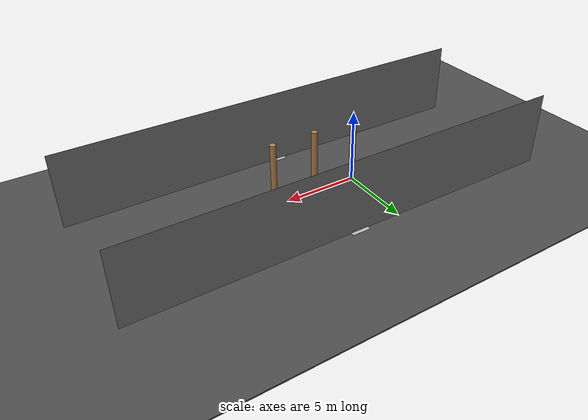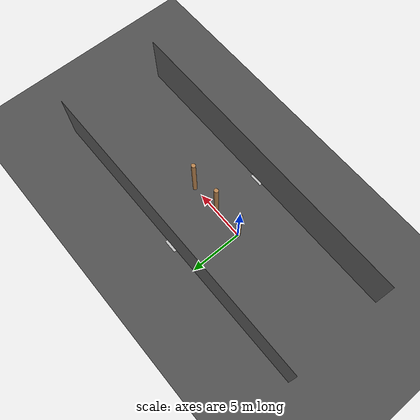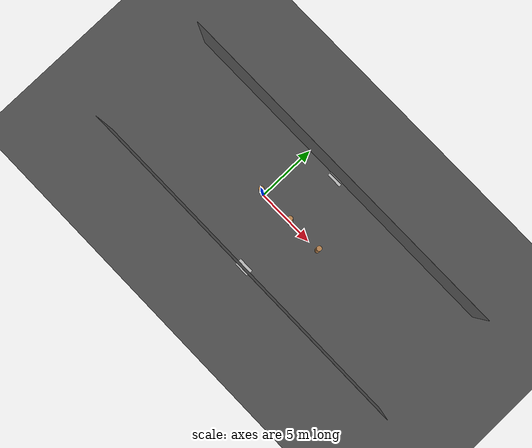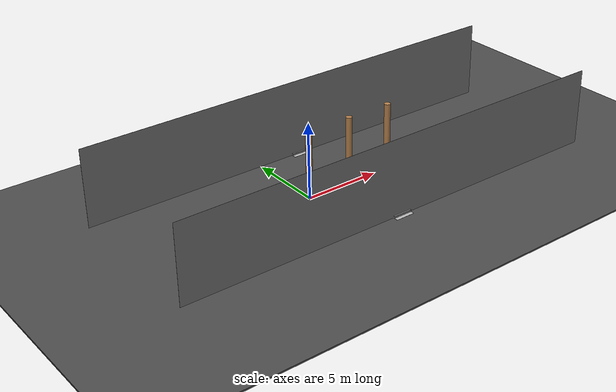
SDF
<?xml version="1.0" ?>
<sdf version='1.4'>
  <world name='default'>

    <physics type='ode'>
      <max_step_size>0.001</max_step_size>
      <real_time_factor>1</real_time_factor>
      <real_time_update_rate>1000</real_time_update_rate>
      <gravity>0 0 -9.8</gravity>
    </physics>

    <spherical_coordinates>
      <surface_model>EARTH_WGS84</surface_model>
      <latitude_deg>0</latitude_deg>
      <longitude_deg>0</longitude_deg>
      <elevation>0</elevation>
      <heading_deg>0</heading_deg>
    </spherical_coordinates>

    <!-- A global light source -->
   <scene>
      <sky>
        <clouds>
          <speed>12</speed>
        </clouds>
      </sky>
   </scene>

   <include>
     <uri>model://sun</uri>
   </include>

   <model name='asphalt_plane'>
     <static>1</static>
     <link name='link'>
       <collision name='collision'>
         <geometry>
           <box>
             <size>100 100 0.1</size>
           </box>
         </geometry>
         <max_contacts>10</max_contacts>
         <surface>
           <contact>
             <ode/>
           </contact>
           <bounce/>
         </surface>
       </collision>
       <visual name='visual'>
         <cast_shadows>0</cast_shadows>
         <geometry>
           <box>
             <size>100 100 0.1</size>
           </box>
         </geometry>
         <material>
           <script>
             <uri>model://asphalt_plane/materials/scripts</uri>
             <uri>model://asphalt_plane/materials/textures</uri>
             <name>vrc/asphalt</name>
           </script>
         </material>
       </visual>
       <self_collide>0</self_collide>
       <kinematic>0</kinematic>
       <gravity>1</gravity>
     </link>
   </model>

    <model name="target_tree1" >
      <pose>0 0 0 0 0 0 </pose>
      <include>
        <uri>model://tree</uri>
      </include>
     <plugin name="gazebo_moving_object_1" filename="libgazebo_moving_object_plugin.so">
       <staticObject>true</staticObject>
       <initDirection>up</initDirection>
       <topicName>target_tree_pose_1</topicName>
     </plugin>
    </model>

    <model name="target_tree2" >
      <pose>3 0 0 0 0 0 </pose>
      <include>
        <uri>model://tree</uri>
      </include>
     <plugin name="gazebo_moving_object_1" filename="libgazebo_moving_object_plugin.so">
       <staticObject>true</staticObject>
       <initDirection>down</initDirection>
       <topicName>target_tree_pose_2</topicName>
     </plugin>
    </model>

    <model name="target_tree3" >
      <pose>6 0 0 0 0 0 </pose>
      <include>
        <uri>model://tree</uri>
      </include>
     <plugin name="gazebo_moving_object_1" filename="libgazebo_moving_object_plugin.so">
       <staticObject>true</staticObject>
       <initDirection>up</initDirection>
       <topicName>target_tree_pose_3</topicName>
     </plugin>
    </model>

    <model name="rockwall_1" >
      <pose>3 5.0 0 0 0 0 </pose>
      <include>
        <uri>model://rockwall</uri>
      </include>
    </model>

    <model name="rockwall_2" >
      <pose>3 -5.0 0 0 0 0 </pose>
      <include>
        <uri>model://rockwall</uri>
      </include>
    </model>

  </world>
</sdf>

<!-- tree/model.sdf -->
<sdf version="1.4">

  <model name='tree'>
    <link name='trunk'>
      <pose>0 0 1.5 0 -0 0</pose>
      <inertial>
        <mass>1</mass>
        <inertia>
          <ixx>0.145833</ixx>
          <ixy>0</ixy>
          <ixz>0</ixz>
          <iyy>0.145833</iyy>
          <iyz>0</iyz>
          <izz>0.125</izz>
        </inertia>
        <pose>0 0 0 0 -0 0</pose>
      </inertial>
      <self_collide>0</self_collide>
      <kinematic>0</kinematic>
      <gravity>1</gravity>
      <visual name='visual'>
        <pose>0 0 0 0 -0 0</pose>
        <geometry>
          <cylinder>
            <radius>0.2</radius>
            <length>6</length>
          </cylinder>
        </geometry>
        <material>
          <script>
            <uri>file://media/materials/scripts/gazebo.material</uri>
            <name>Gazebo/Wood</name>
          </script>
          <ambient>0.3 0.3 0.3 1</ambient>
          <diffuse>0.7 0.7 0.7 1</diffuse>
          <specular>0.01 0.01 0.01 1</specular>
          <emissive>0 0 0 1</emissive>
          <shader type='vertex'>
            <normal_map>__default__</normal_map>
          </shader>
        </material>
        <cast_shadows>1</cast_shadows>
        <transparency>0</transparency>
      </visual>
      <collision name='collision'>
        <laser_retro>0</laser_retro>
        <max_contacts>10</max_contacts>
        <pose>0 0 0 0 -0 0</pose>
        <geometry>
          <cylinder>
            <radius>0.2</radius>
            <length>3</length>
          </cylinder>
        </geometry>
        <surface>
          <friction>
            <ode>
              <mu>1</mu>
              <mu2>1</mu2>
              <fdir1>0 0 0</fdir1>
              <slip1>0</slip1>
              <slip2>0</slip2>
            </ode>
          </friction>
          <bounce>
            <restitution_coefficient>0</restitution_coefficient>
            <threshold>1e+06</threshold>
          </bounce>
          <contact>
            <collide_without_contact>0</collide_without_contact>
            <collide_without_contact_bitmask>1</collide_without_contact_bitmask>
            <ode>
              <soft_cfm>0</soft_cfm>
              <soft_erp>0.2</soft_erp>
              <kp>1e+13</kp>
              <kd>1</kd>
              <max_vel>0.01</max_vel>
              <min_depth>0</min_depth>
            </ode>
            <bullet>
              <split_impulse>1</split_impulse>
              <split_impulse_penetration_threshold>-0.01</split_impulse_penetration_threshold>
              <soft_cfm>0</soft_cfm>
              <soft_erp>0.2</soft_erp>
              <kp>1e+13</kp>
              <kd>1</kd>
            </bullet>
          </contact>
        </surface>
      </collision>
    </link>
    <allow_auto_disable>1</allow_auto_disable>
  </model>
</sdf>

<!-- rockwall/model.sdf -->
<sdf version='1.6'>
  <model name='rockwall'>
    <link name='link'>
      <pose frame=''>0 0 0 0 -0 0</pose>
      <inertial>
        <mass>10</mass>
        <pose frame=''>0 0 0.08974 0 -0 0</pose>
        <inertia>
          <ixx>0.327091</ixx>
          <ixy>0</ixy>
          <ixz>0</ixz>
          <iyy>1.37417</iyy>
          <iyz>0</iyz>
          <izz>1.64109</izz>
        </inertia>
      </inertial>
      <self_collide>0</self_collide>
      <kinematic>0</kinematic>
      <gravity>1</gravity>
      <visual name='ModelPreview_1::link::visual_4'>
        <pose frame=''>0 -0.00249 0.18252 0 -0 0</pose>
        <geometry>
          <box>
            <size>1.27 0.1143 0.00462</size>
          </box>
        </geometry>
        <material>
          <ambient>0.46 0.46 0.46 1</ambient>
          <diffuse>0.46 0.46 0.46 1</diffuse>
          <specular>0 0 0 1</specular>
          <emissive>0 0 0 1</emissive>
          <script>
            <name>ModelPreview_1::link::top_MATERIAL_</name>
            <uri>__default__</uri>
          </script>
          <shader type='vertex'>
            <normal_map>__default__</normal_map>
          </shader>
        </material>
        <cast_shadows>1</cast_shadows>
        <transparency>0</transparency>
      </visual>
      <visual name='ModelPreview_1::link::visual_7'>
        <pose frame=''>0 -0.00249 0.18252 0 -0 0</pose>
        <geometry>
          <box>
            <size>1.27 0.1143 0.00462</size>
          </box>
        </geometry>
        <material>
          <ambient>0.46 0.46 0.46 1</ambient>
          <diffuse>0.46 0.46 0.46 1</diffuse>
          <specular>0 0 0 1</specular>
          <emissive>0 0 0 1</emissive>
          <script>
            <name>ModelPreview_1::link::top_MATERIAL_</name>
            <uri>__default__</uri>
          </script>
          <shader type='vertex'>
            <normal_map>__default__</normal_map>
          </shader>
        </material>
        <cast_shadows>1</cast_shadows>
        <transparency>0</transparency>
      </visual>
      <visual name='ModelPreview_1::link::visual_6'>
        <pose frame=''>0 -0.00249 0.18252 0 -0 0</pose>
        <geometry>
          <box>
            <size>1.27 0.1143 0.00462</size>
          </box>
        </geometry>
        <material>
          <ambient>0.46 0.46 0.46 1</ambient>
          <diffuse>0.46 0.46 0.46 1</diffuse>
          <specular>0 0 0 1</specular>
          <emissive>0 0 0 1</emissive>
          <script>
            <name>ModelPreview_1::link::top_MATERIAL_</name>
            <uri>__default__</uri>
          </script>
          <shader type='vertex'>
            <normal_map>__default__</normal_map>
          </shader>
        </material>
        <cast_shadows>1</cast_shadows>
        <transparency>0</transparency>
      </visual>
      <visual name='ModelPreview_1::link::visual_5'>
        <pose frame=''>0 -0.00249 0.18252 0 -0 0</pose>
        <geometry>
          <box>
            <size>1.27 0.1143 0.00462</size>
          </box>
        </geometry>
        <material>
          <ambient>0.46 0.46 0.46 1</ambient>
          <diffuse>0.46 0.46 0.46 1</diffuse>
          <specular>0 0 0 1</specular>
          <emissive>0 0 0 1</emissive>
          <script>
            <name>ModelPreview_1::link::top_MATERIAL_</name>
            <uri>__default__</uri>
          </script>
          <shader type='vertex'>
            <normal_map>__default__</normal_map>
          </shader>
        </material>
        <cast_shadows>1</cast_shadows>
        <transparency>0</transparency>
      </visual>
      <visual name='platform'>
        <pose frame=''>0 0 0.06432 0 -0 0</pose>
        <geometry>
          <box>
            <size>1.27 0.5969 0.003175</size>
          </box>
        </geometry>
        <cast_shadows>1</cast_shadows>
        <transparency>0</transparency>
        <material>
          <shader type='vertex'>
            <normal_map>__default__</normal_map>
          </shader>
        </material>
      </visual>
      <visual name='ModelPreview_1::link::visual_8'>
        <pose frame=''>0 -0.00249 0.18252 0 -0 0</pose>
        <geometry>
          <box>
            <size>1.27 0.1143 0.00462</size>
          </box>
        </geometry>
        <material>
          <ambient>0.46 0.46 0.46 1</ambient>
          <diffuse>0.46 0.46 0.46 1</diffuse>
          <specular>0 0 0 1</specular>
          <emissive>0 0 0 1</emissive>
          <script>
            <name>ModelPreview_1::link::top_MATERIAL_</name>
            <uri>__default__</uri>
          </script>
          <shader type='vertex'>
            <normal_map>__default__</normal_map>
          </shader>
        </material>
        <cast_shadows>1</cast_shadows>
        <transparency>0</transparency>
      </visual>
      <visual name='ModelPreview_1::link::visual_9'>
        <pose frame=''>0 -0.00249 0.18252 0 -0 0</pose>
        <geometry>
          <box>
            <size>1.27 0.1143 0.00462</size>
          </box>
        </geometry>
        <material>
          <ambient>0.46 0.46 0.46 1</ambient>
          <diffuse>0.46 0.46 0.46 1</diffuse>
          <specular>0 0 0 1</specular>
          <emissive>0 0 0 1</emissive>
          <script>
            <name>ModelPreview_1::link::top_MATERIAL_</name>
            <uri>__default__</uri>
          </script>
          <shader type='vertex'>
            <normal_map>__default__</normal_map>
          </shader>
        </material>
        <cast_shadows>1</cast_shadows>
        <transparency>0</transparency>
      </visual>
      <visual name='up1'>
        <pose frame=''>0 0.05166 0.12537 0 -0 0</pose>
        <geometry>
          <box>
            <size>30 0.00462 10</size>
          </box>
        </geometry>
        <material>
          <ambient>0.46 0.46 0.46 1</ambient>
          <diffuse>0.46 0.46 0.46 1</diffuse>
          <specular>0 0 0 1</specular>
          <emissive>0 0 0 1</emissive>
          <script>
            <name>ModelPreview_1::link::up1_MATERIAL_</name>
            <uri>__default__</uri>
          </script>
          <shader type='vertex'>
            <normal_map>__default__</normal_map>
          </shader>
        </material>
        <cast_shadows>1</cast_shadows>
        <transparency>0</transparency>
      </visual>
      <visual name='up2'>
        <pose frame=''>0 -0.05801 0.12537 0 -0 0</pose>
        <geometry>
          <box>
            <size>1.27 0.00462 0.11892</size>
          </box>
        </geometry>
        <material>
          <ambient>0.46 0.46 0.46 1</ambient>
          <diffuse>0.46 0.46 0.46 1</diffuse>
          <specular>0 0 0 1</specular>
          <emissive>0 0 0 1</emissive>
          <script>
            <name>ModelPreview_1::link::up2_MATERIAL_</name>
            <uri>__default__</uri>
          </script>
          <shader type='vertex'>
            <normal_map>__default__</normal_map>
          </shader>
        </material>
        <cast_shadows>1</cast_shadows>
        <transparency>0</transparency>
      </visual>
      <visual name='top'>
        <pose frame=''>0 -0.00249 0.18252 0 -0 0</pose>
        <geometry>
          <box>
            <size>1.27 0.1143 0.00462</size>
          </box>
        </geometry>
        <material>
          <ambient>0.46 0.46 0.46 1</ambient>
          <diffuse>0.46 0.46 0.46 1</diffuse>
          <specular>0 0 0 1</specular>
          <emissive>0 0 0 1</emissive>
          <script>
            <name>ModelPreview_1::link::top_MATERIAL_</name>
            <uri>__default__</uri>
          </script>
          <shader type='vertex'>
            <normal_map>__default__</normal_map>
          </shader>
        </material>
        <cast_shadows>1</cast_shadows>
        <transparency>0</transparency>
      </visual>
      <collision name='top'>
        <laser_retro>0</laser_retro>
        <max_contacts>10</max_contacts>
        <pose frame=''>0 -0.00249 0.18252 0 -0 0</pose>
        <geometry>
          <box>
            <size>1.27 0.1143 0.00462</size>
          </box>
        </geometry>
        <surface>
          <friction>
            <ode>
              <mu>1</mu>
              <mu2>1</mu2>
              <fdir1>0 0 0</fdir1>
              <slip1>0</slip1>
              <slip2>0</slip2>
            </ode>
            <torsional>
              <coefficient>1</coefficient>
              <patch_radius>0</patch_radius>
              <surface_radius>0</surface_radius>
              <use_patch_radius>1</use_patch_radius>
              <ode>
                <slip>0</slip>
              </ode>
            </torsional>
          </friction>
          <bounce>
            <restitution_coefficient>0</restitution_coefficient>
            <threshold>1e+06</threshold>
          </bounce>
          <contact>
            <collide_without_contact>0</collide_without_contact>
            <collide_without_contact_bitmask>1</collide_without_contact_bitmask>
            <collide_bitmask>1</collide_bitmask>
            <ode>
              <soft_cfm>0</soft_cfm>
              <soft_erp>0.2</soft_erp>
              <kp>1e+13</kp>
              <kd>1</kd>
              <max_vel>0.01</max_vel>
              <min_depth>0</min_depth>
            </ode>
            <bullet>
              <split_impulse>1</split_impulse>
              <split_impulse_penetration_threshold>-0.01</split_impulse_penetration_threshold>
              <soft_cfm>0</soft_cfm>
              <soft_erp>0.2</soft_erp>
              <kp>1e+13</kp>
              <kd>1</kd>
            </bullet>
          </contact>
        </surface>
      </collision>
      <collision name='platform'>
        <laser_retro>0</laser_retro>
        <max_contacts>10</max_contacts>
        <pose frame=''>0 0 0.06432 0 -0 0</pose>
        <geometry>
          <box>
            <size>1.27 0.5969 0.003175</size>
          </box>
        </geometry>
        <surface>
          <friction>
            <ode>
              <mu>1</mu>
              <mu2>1</mu2>
              <fdir1>0 0 0</fdir1>
              <slip1>0</slip1>
              <slip2>0</slip2>
            </ode>
            <torsional>
              <coefficient>1</coefficient>
              <patch_radius>0</patch_radius>
              <surface_radius>0</surface_radius>
              <use_patch_radius>1</use_patch_radius>
              <ode>
                <slip>0</slip>
              </ode>
            </torsional>
          </friction>
          <bounce>
            <restitution_coefficient>0</restitution_coefficient>
            <threshold>1e+06</threshold>
          </bounce>
          <contact>
            <collide_without_contact>0</collide_without_contact>
            <collide_without_contact_bitmask>1</collide_without_contact_bitmask>
            <collide_bitmask>1</collide_bitmask>
            <ode>
              <soft_cfm>0</soft_cfm>
              <soft_erp>0.2</soft_erp>
              <kp>1e+13</kp>
              <kd>1</kd>
              <max_vel>0.01</max_vel>
              <min_depth>0</min_depth>
            </ode>
            <bullet>
              <split_impulse>1</split_impulse>
              <split_impulse_penetration_threshold>-0.01</split_impulse_penetration_threshold>
              <soft_cfm>0</soft_cfm>
              <soft_erp>0.2</soft_erp>
              <kp>1e+13</kp>
              <kd>1</kd>
            </bullet>
          </contact>
        </surface>
      </collision>
      <collision name='up2'>
        <laser_retro>0</laser_retro>
        <max_contacts>10</max_contacts>
        <pose frame=''>0 -0.05801 0.12537 0 -0 0</pose>
        <geometry>
          <box>
            <size>1.27 0.00462 0.11892</size>
          </box>
        </geometry>
        <surface>
          <friction>
            <ode>
              <mu>1</mu>
              <mu2>1</mu2>
              <fdir1>0 0 0</fdir1>
              <slip1>0</slip1>
              <slip2>0</slip2>
            </ode>
            <torsional>
              <coefficient>1</coefficient>
              <patch_radius>0</patch_radius>
              <surface_radius>0</surface_radius>
              <use_patch_radius>1</use_patch_radius>
              <ode>
                <slip>0</slip>
              </ode>
            </torsional>
          </friction>
          <bounce>
            <restitution_coefficient>0</restitution_coefficient>
            <threshold>1e+06</threshold>
          </bounce>
          <contact>
            <collide_without_contact>0</collide_without_contact>
            <collide_without_contact_bitmask>1</collide_without_contact_bitmask>
            <collide_bitmask>1</collide_bitmask>
            <ode>
              <soft_cfm>0</soft_cfm>
              <soft_erp>0.2</soft_erp>
              <kp>1e+13</kp>
              <kd>1</kd>
              <max_vel>0.01</max_vel>
              <min_depth>0</min_depth>
            </ode>
            <bullet>
              <split_impulse>1</split_impulse>
              <split_impulse_penetration_threshold>-0.01</split_impulse_penetration_threshold>
              <soft_cfm>0</soft_cfm>
              <soft_erp>0.2</soft_erp>
              <kp>1e+13</kp>
              <kd>1</kd>
            </bullet>
          </contact>
        </surface>
      </collision>
      <collision name='up1'>
        <laser_retro>0</laser_retro>
        <max_contacts>10</max_contacts>
        <pose frame=''>0 0.05166 0.12537 0 -0 0</pose>
        <geometry>
          <box>
            <size>30 0.00462 10</size>
          </box>
        </geometry>
        <surface>
          <friction>
            <ode>
              <mu>1</mu>
              <mu2>1</mu2>
              <fdir1>0 0 0</fdir1>
              <slip1>0</slip1>
              <slip2>0</slip2>
            </ode>
            <torsional>
              <coefficient>1</coefficient>
              <patch_radius>0</patch_radius>
              <surface_radius>0</surface_radius>
              <use_patch_radius>1</use_patch_radius>
              <ode>
                <slip>0</slip>
              </ode>
            </torsional>
          </friction>
          <bounce>
            <restitution_coefficient>0</restitution_coefficient>
            <threshold>1e+06</threshold>
          </bounce>
          <contact>
            <collide_without_contact>0</collide_without_contact>
            <collide_without_contact_bitmask>1</collide_without_contact_bitmask>
            <collide_bitmask>1</collide_bitmask>
            <ode>
              <soft_cfm>0</soft_cfm>
              <soft_erp>0.2</soft_erp>
              <kp>1e+13</kp>
              <kd>1</kd>
              <max_vel>0.01</max_vel>
              <min_depth>0</min_depth>
            </ode>
            <bullet>
              <split_impulse>1</split_impulse>
              <split_impulse_penetration_threshold>-0.01</split_impulse_penetration_threshold>
              <soft_cfm>0</soft_cfm>
              <soft_erp>0.2</soft_erp>
              <kp>1e+13</kp>
              <kd>1</kd>
            </bullet>
          </contact>
        </surface>
      </collision>
    </link>
    <static>1</static>
    <allow_auto_disable>1</allow_auto_disable>
  </model>
</sdf>
